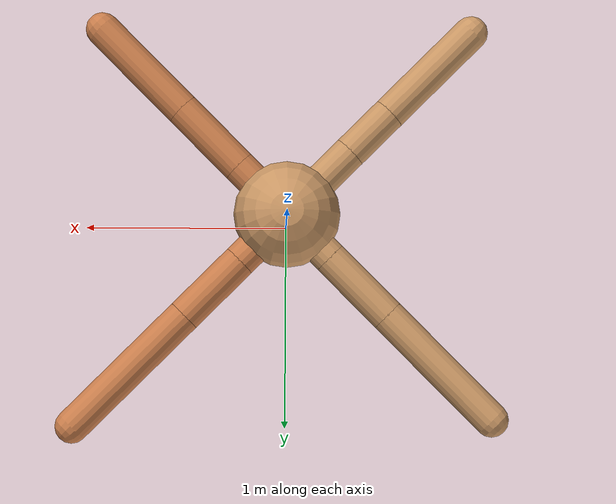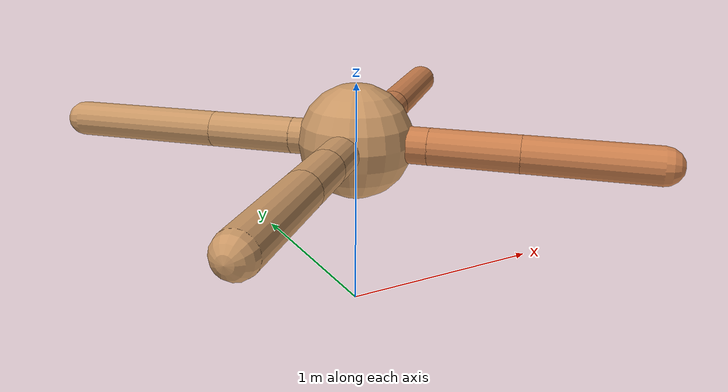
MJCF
<mujoco model="ant">
  <compiler angle="degree" coordinate="local" inertiafromgeom="true" />
  <option integrator="RK4" timestep="0.01" />
  <custom>
    <numeric data="0.0 0.0 0.55 1.0 0.0 0.0 0.0 0.0 1.0 0.0 -1.0 0.0 -1.0 0.0 1.0" name="init_qpos" />
  </custom>
  <default>
    <joint armature="1" damping="1" limited="true" />
    <geom conaffinity="0" condim="3" density="5.0" friction="1.5 0.1 0.1" margin="0.01" rgba="0.8 0.6 0.4 1" />
  </default>
  <worldbody>
    <body name="torso" pos="0 0 0.75">
      <geom name="torso_geom" pos="0 0 0" size="0.25" type="sphere" />

      <body name="front_left_leg" pos="0 0 0">
        <geom fromto="0.0 0.0 0.0 0.21989861347110598 0.21989861347110598 0.0" name="aux_1_geom" size="0.08" type="capsule" rgba=".8 .5 .3 1" />
        <body name="aux_1" pos="0.21989861347110598 0.21989861347110598 0.0">
          <joint axis="0 0 1" name="hip_1" pos="0.0 0.0 0.0" range="-40 40" type="hinge" />
          <geom fromto="0.0 0.0 0.0 0.2564025534205832 0.2564025534205832 0.0" name="left_leg_geom" size="0.08" type="capsule" rgba=".8 .5 .3 1" />
          <body pos="0.2564025534205832 0.2564025534205832 0.0" name="front_left_foot">
            <joint axis="-1 1 0" name="ankle_1" pos="0.0 0.0 0.0" range="30 100" type="hinge" />
            <geom fromto="0.0 0.0 0.0 0.5172341869169451 0.5172341869169451 0.0" name="left_ankle_geom" size="0.08" type="capsule" rgba=".8 .5 .3 1" />
          </body>
        </body>
      </body>
      <body name="front_right_leg" pos="0 0 0">
        <geom fromto="0.0 0.0 0.0 -0.20384867951507274 0.20384867951507274 0.0" name="aux_2_geom" size="0.08" type="capsule" />
        <body name="aux_2" pos="-0.20384867951507274 0.20384867951507274 0.0">
          <joint axis="0 0 1" name="hip_2" pos="0.0 0.0 0.0" range="-40 40" type="hinge" />
          <geom fromto="0.0 0.0 0.0 -0.26742607779607114 0.26742607779607114 0.0" name="right_leg_geom" size="0.08" type="capsule" />
          <body pos="-0.26742607779607114 0.26742607779607114 0.0" name="front_right_foot">
            <joint axis="1 1 0" name="ankle_2" pos="0.0 0.0 0.0" range="-100 -30" type="hinge" />
            <geom fromto="0.0 0.0 0.0 -0.48322611015702466 0.48322611015702466 0.0" name="right_ankle_geom" size="0.08" type="capsule" />
          </body>
        </body>
      </body>
      <body name="left_back_leg" pos="0 0 0">
        <geom fromto="0.0 0.0 0.0 -0.2942083329433988 -0.2942083329433988 0.0" name="aux_3_geom" size="0.08" type="capsule" />
        <body name="aux_3" pos="-0.2942083329433988 -0.2942083329433988 0.0">
          <joint axis="0 0 1" name="hip_3" pos="0.0 0.0 0.0" range="-40 40" type="hinge" />
          <geom fromto="0.0 0.0 0.0 -0.18364258078664977 -0.18364258078664977 0.0" name="back_leg_geom" size="0.08" type="capsule" />
          <body pos="-0.18364258078664977 -0.18364258078664977 0.0" name="left_back_foot">
            <joint axis="-1 1 0" name="ankle_3" pos="0.0 0.0 0.0" range="-100 -30" type="hinge" />
            <geom fromto="0.0 0.0 0.0 -0.3845067352005313 -0.3845067352005313 0.0" name="third_ankle_geom" size="0.08" type="capsule" />
          </body>
        </body>
      </body>
      <body name="right_back_leg" pos="0 0 0">
        <geom fromto="0.0 0.0 0.0 0.22465587396864015 -0.22465587396864015 0.0" name="aux_4_geom" size="0.08" type="capsule" rgba=".8 .5 .3 1" />
        <body name="aux_4" pos="0.22465587396864015 -0.22465587396864015 0.0">
          <joint axis="0 0 1" name="hip_4" pos="0.0 0.0 0.0" range="-40 40" type="hinge" />
          <geom fromto="0.0 0.0 0.0 0.26709205040795464 -0.26709205040795464 0.0" name="rightback_leg_geom" size="0.08" type="capsule" rgba=".8 .5 .3 1" />
          <body pos="0.26709205040795464 -0.26709205040795464 0.0" name="right_back_foot">
            <joint axis="1 1 0" name="ankle_4" pos="0.0 0.0 0.0" range="30 100" type="hinge" />
            <geom fromto="0.0 0.0 0.0 0.38000926280898467 -0.38000926280898467 0.0" name="fourth_ankle_geom" size="0.08" type="capsule" rgba=".8 .5 .3 1" />
          </body>
        </body>
      </body>
    </body>
  </worldbody>
  <actuator>
    <motor ctrllimited="true" ctrlrange="-1.0 1.0" joint="hip_4" gear="150" />
    <motor ctrllimited="true" ctrlrange="-1.0 1.0" joint="ankle_4" gear="150" />
    <motor ctrllimited="true" ctrlrange="-1.0 1.0" joint="hip_1" gear="150" />
    <motor ctrllimited="true" ctrlrange="-1.0 1.0" joint="ankle_1" gear="150" />
    <motor ctrllimited="true" ctrlrange="-1.0 1.0" joint="hip_2" gear="150" />
    <motor ctrllimited="true" ctrlrange="-1.0 1.0" joint="ankle_2" gear="150" />
    <motor ctrllimited="true" ctrlrange="-1.0 1.0" joint="hip_3" gear="150" />
    <motor ctrllimited="true" ctrlrange="-1.0 1.0" joint="ankle_3" gear="150" />
  </actuator>
</mujoco>
